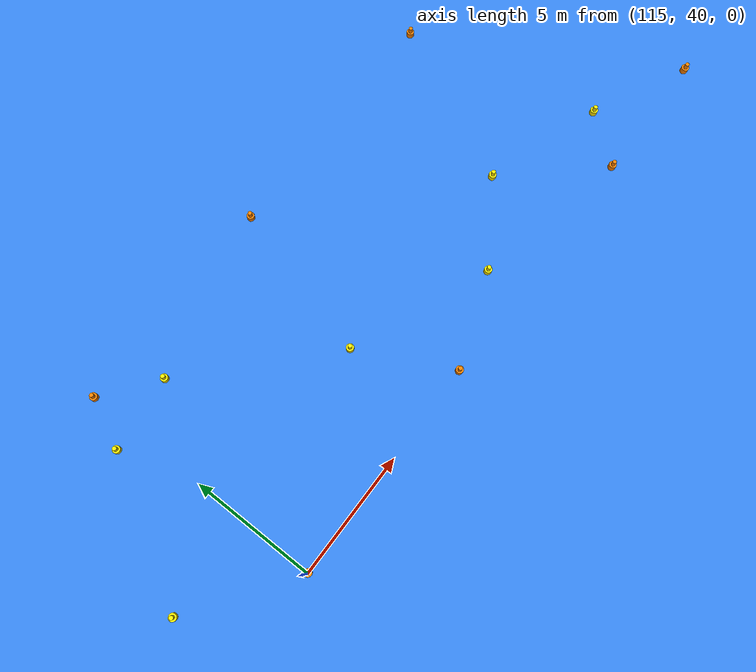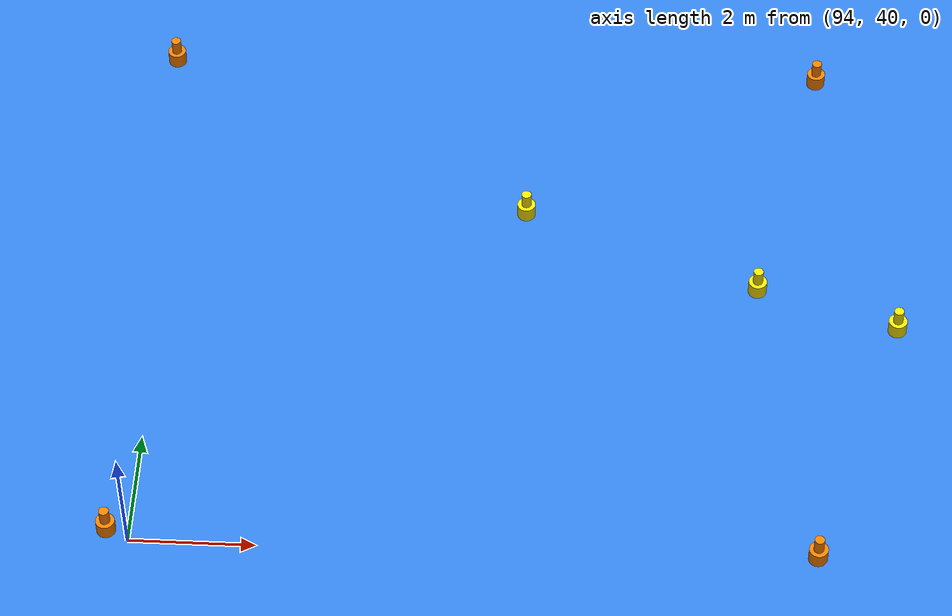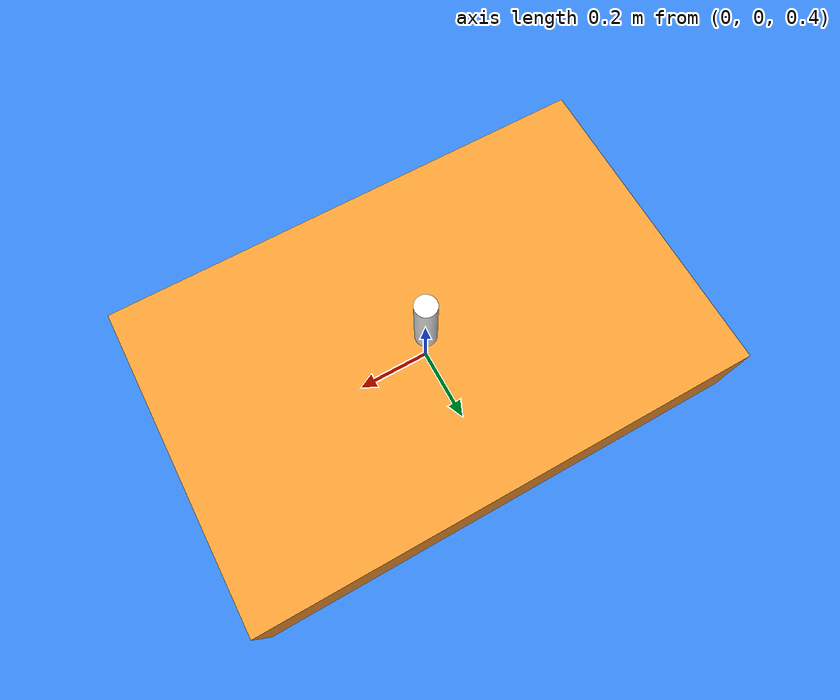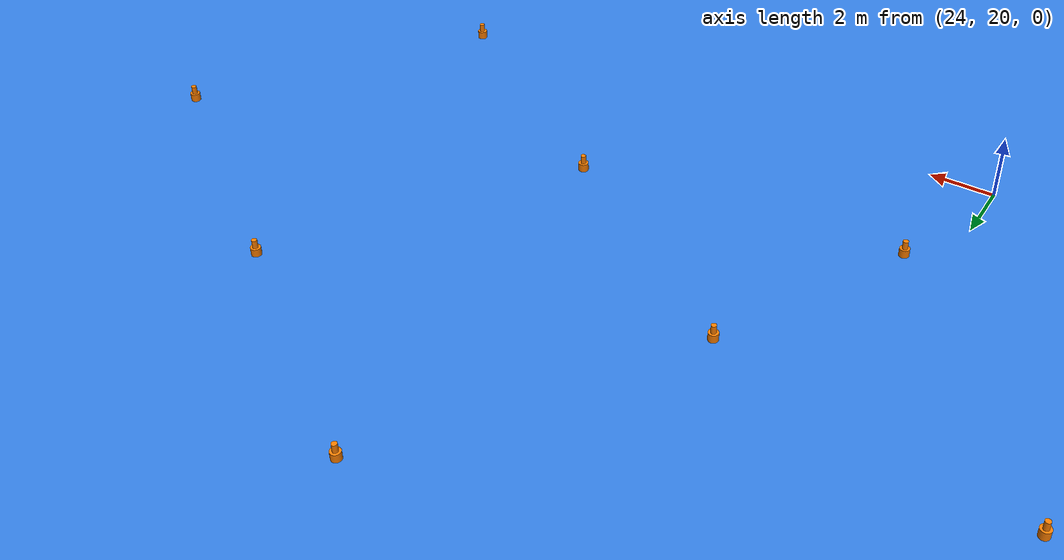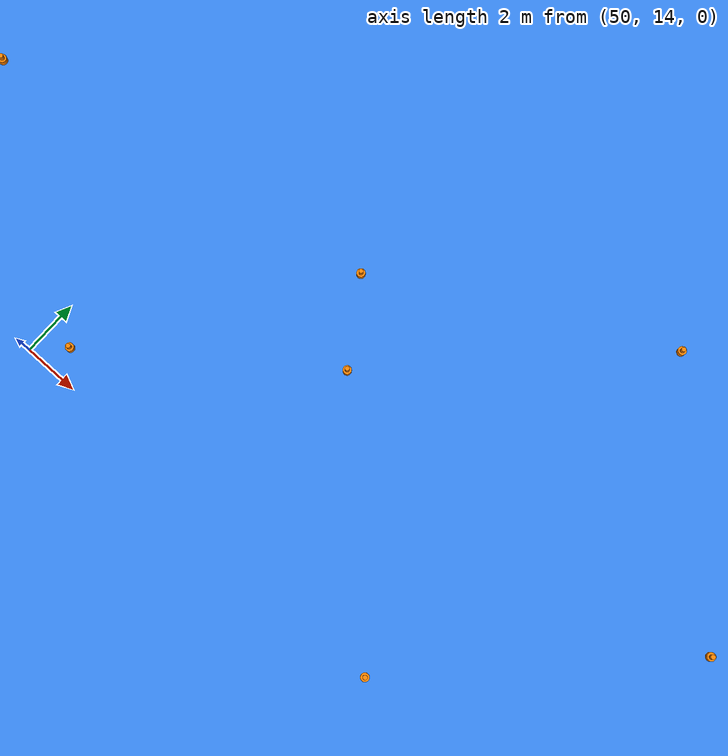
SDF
<?xml version="1.0" ?>
<sdf version="1.6">
  <world name="ida_sim">
    <!-- Güneş ışığı + ortam aydınlatması -->
    <include>
      <uri>model://sun</uri>
    </include>

    <light name="ambient_light" type="directional">
      <cast_shadows>true</cast_shadows>
      <pose>0 0 30 0 0 0</pose>
      <diffuse>0.9 0.9 0.9 1</diffuse>
      <specular>0.2 0.2 0.2 1</specular>
      <direction>-0.5 -0.5 -0.9</direction>
      <attenuation>
        <range>1000</range>
        <constant>0.9</constant>
        <linear>0.01</linear>
        <quadratic>0.001</quadratic>
      </attenuation>
    </light>

    <!-- Varsayılan fizik (yüzey yerçekimi, standart temas) -->
    <physics type="ode">
      <max_step_size>0.001</max_step_size>
      <real_time_factor>1</real_time_factor>
      <real_time_update_rate>1000</real_time_update_rate>
    </physics>

    <!-- Su yüzeyi: z=0 düzleminde büyük mavi yarı saydam tabaka -->
    <model name="water_plane">
      <static>true</static>
      <link name="water_link">
        <collision name="water_collision">
          <pose>0 0 0 0 0 0</pose>
          <geometry>
            <plane>
              <normal>0 0 1</normal>
              <size>100 100</size>
            </plane>
          </geometry>
        </collision>
        <visual name="water_visual">
          <pose>0 0 0 0 0 0</pose>
          <geometry>
            <plane>
              <normal>0 0 1</normal>
              <size>100 100</size>
            </plane>
          </geometry>
          <material>
            <ambient>0.2 0.4 0.8 0.6</ambient>
            <diffuse>0.2 0.5 0.9 0.6</diffuse>
            <specular>0.1 0.1 0.1 1</specular>
          </material>
        </visual>
      </link>
    </model>

    <model name="ida_boat">
      <static>false</static>
      <pose>0 0 0.3 0 0 0</pose>
      <link name="boat_body">
        <pose>0 0 0.125 0 0 0</pose>
        <collision name="boat_body_collision">
          <geometry>
            <box>
              <size>1.4 0.9 0.25</size>
            </box>
          </geometry>
        </collision>
        <visual name="boat_body_visual">
          <geometry>
            <box>
              <size>1.4 0.9 0.25</size>
            </box>
          </geometry>
          <material>
            <ambient>1.0 0.55 0.15 1</ambient>
            <diffuse>1.0 0.6 0.2 1</diffuse>
          </material>
        </visual>
      </link>
      <link name="mast">
        <pose>0 0 0.25 0 0 0</pose>
        <visual name="mast_visual">
          <geometry>
            <cylinder>
              <radius>0.03</radius>
              <length>0.4</length>
            </cylinder>
          </geometry>
          <material>
            <ambient>0.9 0.9 0.9 1</ambient>
            <diffuse>1 1 1 1</diffuse>
          </material>
        </visual>
      </link>
      <!-- Kamera: tekne önüne (ENU +x) ve mast tepesine monte -->
      <link name="camera_link">
        <pose>0.5 0 0.5 0 0 0</pose>
        <inertial>
          <mass>0.05</mass>
          <inertia>
            <ixx>0.0001</ixx>
            <iyy>0.0001</iyy>
            <izz>0.0001</izz>
          </inertia>
        </inertial>
        <sensor name="camera_sensor" type="camera">
          <camera>
            <horizontal_fov>1.57</horizontal_fov>
            <image>
              <width>640</width>
              <height>480</height>
            </image>
            <clip>
              <near>0.1</near>
              <far>100</far>
            </clip>
          </camera>
          <update_rate>10</update_rate>
          <plugin name="ida_camera" filename="libgazebo_ros_camera.so">
            <ros>
              <namespace>/</namespace>
              <remapping>image_raw:=camera/image_raw</remapping>
            </ros>
            <camera_name>ida_camera</camera_name>
            <image_width>640</image_width>
            <image_height>480</image_height>
            <update_rate>10</update_rate>
            <horizontal_fov>1.57</horizontal_fov>
          </plugin>
        </sensor>
      </link>
      <!-- 2D Lidar (ray): mast üstü, 360 derece -->
      <link name="lidar_link">
        <pose>0.2 0 0.2 0 0 0</pose>
        <inertial>
          <mass>0.05</mass>
          <inertia>
            <ixx>0.0001</ixx>
            <iyy>0.0001</iyy>
            <izz>0.0001</izz>
          </inertia>
        </inertial>
        <sensor name="lidar_sensor" type="ray">
          <ray>
            <scan>
              <horizontal>
                <samples>360</samples>
                <resolution>1</resolution>
                <min_angle>-3.14159</min_angle>
                <max_angle>3.14159</max_angle>
              </horizontal>
            </scan>
            <range>
              <min>0.3</min>
              <max>18.0</max>
              <resolution>0.01</resolution>
            </range>
            <noise>
              <type>gaussian</type>
              <mean>0.0</mean>
              <stddev>0.01</stddev>
            </noise>
          </ray>
          <update_rate>10</update_rate>
          <plugin name="ida_lidar" filename="libgazebo_ros_ray.so">
            <ros>
              <namespace>/</namespace>
              <remapping>scan:=scan</remapping>
            </ros>
            <output_type>sensor_msgs/LaserScan</output_type>
            <update_rate>10</update_rate>
            <min_angle>-3.14159</min_angle>
            <max_angle>3.14159</max_angle>
            <range_min>0.3</range_min>
            <range_max>18.0</range_max>
          </plugin>
        </sensor>
      </link>
    </model>

<!-- ida_course_models.sdf — otomatik üretildi (tools/generate_course.py).
     Duba katmanı: world'e gömülür (ENU dönüşümü uygulanır);
     pozlar full_mission.yaml ile birebir. -->
  <model name="p1_o_l1" static="true">
    <pose>3.201 6.159 0.250 0 0 0</pose>
    <link name="p1_o_l1_link">
      <collision name="p1_o_l1_collision">
        <geometry>
          <cylinder>
            <radius>0.15</radius>
            <length>0.5</length>
          </cylinder>
        </geometry>
      </collision>
      <visual name="p1_o_l1_visual_bottom">
        <pose>0 0 0.125 0 0 0</pose>
        <geometry>
          <cylinder>
            <radius>0.15</radius>
            <length>0.25</length>
          </cylinder>
        </geometry>
        <material>
          <ambient>1.00 0.50 0.00 1.00</ambient>
          <diffuse>1.00 0.50 0.00 1.00</diffuse>
        </material>
      </visual>
      <visual name="p1_o_l1_visual_top">
        <pose>0 0 0.375 0 0 0</pose>
        <geometry>
          <cylinder>
            <radius>0.08</radius>
            <length>0.25</length>
          </cylinder>
        </geometry>
        <material>
          <ambient>1.00 0.50 0.00 1.00</ambient>
          <diffuse>1.00 0.50 0.00 1.00</diffuse>
        </material>
      </visual>
    </link>
  </model>
  <model name="p1_o_r1" static="true">
    <pose>-3.201 13.841 0.250 0 0 0</pose>
    <link name="p1_o_r1_link">
      <collision name="p1_o_r1_collision">
        <geometry>
          <cylinder>
            <radius>0.15</radius>
            <length>0.5</length>
          </cylinder>
        </geometry>
      </collision>
      <visual name="p1_o_r1_visual_bottom">
        <pose>0 0 0.125 0 0 0</pose>
        <geometry>
          <cylinder>
            <radius>0.15</radius>
            <length>0.25</length>
          </cylinder>
        </geometry>
        <material>
          <ambient>1.00 0.50 0.00 1.00</ambient>
          <diffuse>1.00 0.50 0.00 1.00</diffuse>
        </material>
      </visual>
      <visual name="p1_o_r1_visual_top">
        <pose>0 0 0.375 0 0 0</pose>
        <geometry>
          <cylinder>
            <radius>0.08</radius>
            <length>0.25</length>
          </cylinder>
        </geometry>
        <material>
          <ambient>1.00 0.50 0.00 1.00</ambient>
          <diffuse>1.00 0.50 0.00 1.00</diffuse>
        </material>
      </visual>
    </link>
  </model>
  <model name="p1_o_l2" static="true">
    <pose>9.713 11.585 0.250 0 0 0</pose>
    <link name="p1_o_l2_link">
      <collision name="p1_o_l2_collision">
        <geometry>
          <cylinder>
            <radius>0.15</radius>
            <length>0.5</length>
          </cylinder>
        </geometry>
      </collision>
      <visual name="p1_o_l2_visual_bottom">
        <pose>0 0 0.125 0 0 0</pose>
        <geometry>
          <cylinder>
            <radius>0.15</radius>
            <length>0.25</length>
          </cylinder>
        </geometry>
        <material>
          <ambient>1.00 0.50 0.00 1.00</ambient>
          <diffuse>1.00 0.50 0.00 1.00</diffuse>
        </material>
      </visual>
      <visual name="p1_o_l2_visual_top">
        <pose>0 0 0.375 0 0 0</pose>
        <geometry>
          <cylinder>
            <radius>0.08</radius>
            <length>0.25</length>
          </cylinder>
        </geometry>
        <material>
          <ambient>1.00 0.50 0.00 1.00</ambient>
          <diffuse>1.00 0.50 0.00 1.00</diffuse>
        </material>
      </visual>
    </link>
  </model>
  <model name="p1_o_r2" static="true">
    <pose>3.311 19.268 0.250 0 0 0</pose>
    <link name="p1_o_r2_link">
      <collision name="p1_o_r2_collision">
        <geometry>
          <cylinder>
            <radius>0.15</radius>
            <length>0.5</length>
          </cylinder>
        </geometry>
      </collision>
      <visual name="p1_o_r2_visual_bottom">
        <pose>0 0 0.125 0 0 0</pose>
        <geometry>
          <cylinder>
            <radius>0.15</radius>
            <length>0.25</length>
          </cylinder>
        </geometry>
        <material>
          <ambient>1.00 0.50 0.00 1.00</ambient>
          <diffuse>1.00 0.50 0.00 1.00</diffuse>
        </material>
      </visual>
      <visual name="p1_o_r2_visual_top">
        <pose>0 0 0.375 0 0 0</pose>
        <geometry>
          <cylinder>
            <radius>0.08</radius>
            <length>0.25</length>
          </cylinder>
        </geometry>
        <material>
          <ambient>1.00 0.50 0.00 1.00</ambient>
          <diffuse>1.00 0.50 0.00 1.00</diffuse>
        </material>
      </visual>
    </link>
  </model>
  <model name="p1_o_l3" static="true">
    <pose>17.403 17.994 0.250 0 0 0</pose>
    <link name="p1_o_l3_link">
      <collision name="p1_o_l3_collision">
        <geometry>
          <cylinder>
            <radius>0.15</radius>
            <length>0.5</length>
          </cylinder>
        </geometry>
      </collision>
      <visual name="p1_o_l3_visual_bottom">
        <pose>0 0 0.125 0 0 0</pose>
        <geometry>
          <cylinder>
            <radius>0.15</radius>
            <length>0.25</length>
          </cylinder>
        </geometry>
        <material>
          <ambient>1.00 0.50 0.00 1.00</ambient>
          <diffuse>1.00 0.50 0.00 1.00</diffuse>
        </material>
      </visual>
      <visual name="p1_o_l3_visual_top">
        <pose>0 0 0.375 0 0 0</pose>
        <geometry>
          <cylinder>
            <radius>0.08</radius>
            <length>0.25</length>
          </cylinder>
        </geometry>
        <material>
          <ambient>1.00 0.50 0.00 1.00</ambient>
          <diffuse>1.00 0.50 0.00 1.00</diffuse>
        </material>
      </visual>
    </link>
  </model>
  <model name="p1_o_r3" static="true">
    <pose>11.001 25.676 0.250 0 0 0</pose>
    <link name="p1_o_r3_link">
      <collision name="p1_o_r3_collision">
        <geometry>
          <cylinder>
            <radius>0.15</radius>
            <length>0.5</length>
          </cylinder>
        </geometry>
      </collision>
      <visual name="p1_o_r3_visual_bottom">
        <pose>0 0 0.125 0 0 0</pose>
        <geometry>
          <cylinder>
            <radius>0.15</radius>
            <length>0.25</length>
          </cylinder>
        </geometry>
        <material>
          <ambient>1.00 0.50 0.00 1.00</ambient>
          <diffuse>1.00 0.50 0.00 1.00</diffuse>
        </material>
      </visual>
      <visual name="p1_o_r3_visual_top">
        <pose>0 0 0.375 0 0 0</pose>
        <geometry>
          <cylinder>
            <radius>0.08</radius>
            <length>0.25</length>
          </cylinder>
        </geometry>
        <material>
          <ambient>1.00 0.50 0.00 1.00</ambient>
          <diffuse>1.00 0.50 0.00 1.00</diffuse>
        </material>
      </visual>
    </link>
  </model>
  <model name="p1_o_l4" static="true">
    <pose>25.121 24.426 0.250 0 0 0</pose>
    <link name="p1_o_l4_link">
      <collision name="p1_o_l4_collision">
        <geometry>
          <cylinder>
            <radius>0.15</radius>
            <length>0.5</length>
          </cylinder>
        </geometry>
      </collision>
      <visual name="p1_o_l4_visual_bottom">
        <pose>0 0 0.125 0 0 0</pose>
        <geometry>
          <cylinder>
            <radius>0.15</radius>
            <length>0.25</length>
          </cylinder>
        </geometry>
        <material>
          <ambient>1.00 0.50 0.00 1.00</ambient>
          <diffuse>1.00 0.50 0.00 1.00</diffuse>
        </material>
      </visual>
      <visual name="p1_o_l4_visual_top">
        <pose>0 0 0.375 0 0 0</pose>
        <geometry>
          <cylinder>
            <radius>0.08</radius>
            <length>0.25</length>
          </cylinder>
        </geometry>
        <material>
          <ambient>1.00 0.50 0.00 1.00</ambient>
          <diffuse>1.00 0.50 0.00 1.00</diffuse>
        </material>
      </visual>
    </link>
  </model>
  <model name="p1_o_r4" static="true">
    <pose>18.719 32.108 0.250 0 0 0</pose>
    <link name="p1_o_r4_link">
      <collision name="p1_o_r4_collision">
        <geometry>
          <cylinder>
            <radius>0.15</radius>
            <length>0.5</length>
          </cylinder>
        </geometry>
      </collision>
      <visual name="p1_o_r4_visual_bottom">
        <pose>0 0 0.125 0 0 0</pose>
        <geometry>
          <cylinder>
            <radius>0.15</radius>
            <length>0.25</length>
          </cylinder>
        </geometry>
        <material>
          <ambient>1.00 0.50 0.00 1.00</ambient>
          <diffuse>1.00 0.50 0.00 1.00</diffuse>
        </material>
      </visual>
      <visual name="p1_o_r4_visual_top">
        <pose>0 0 0.375 0 0 0</pose>
        <geometry>
          <cylinder>
            <radius>0.08</radius>
            <length>0.25</length>
          </cylinder>
        </geometry>
        <material>
          <ambient>1.00 0.50 0.00 1.00</ambient>
          <diffuse>1.00 0.50 0.00 1.00</diffuse>
        </material>
      </visual>
    </link>
  </model>
  <model name="p1_o_l5" static="true">
    <pose>27.994 30.328 0.250 0 0 0</pose>
    <link name="p1_o_l5_link">
      <collision name="p1_o_l5_collision">
        <geometry>
          <cylinder>
            <radius>0.15</radius>
            <length>0.5</length>
          </cylinder>
        </geometry>
      </collision>
      <visual name="p1_o_l5_visual_bottom">
        <pose>0 0 0.125 0 0 0</pose>
        <geometry>
          <cylinder>
            <radius>0.15</radius>
            <length>0.25</length>
          </cylinder>
        </geometry>
        <material>
          <ambient>1.00 0.50 0.00 1.00</ambient>
          <diffuse>1.00 0.50 0.00 1.00</diffuse>
        </material>
      </visual>
      <visual name="p1_o_l5_visual_top">
        <pose>0 0 0.375 0 0 0</pose>
        <geometry>
          <cylinder>
            <radius>0.08</radius>
            <length>0.25</length>
          </cylinder>
        </geometry>
        <material>
          <ambient>1.00 0.50 0.00 1.00</ambient>
          <diffuse>1.00 0.50 0.00 1.00</diffuse>
        </material>
      </visual>
    </link>
  </model>
  <model name="p1_o_r5" static="true">
    <pose>33.541 38.648 0.250 0 0 0</pose>
    <link name="p1_o_r5_link">
      <collision name="p1_o_r5_collision">
        <geometry>
          <cylinder>
            <radius>0.15</radius>
            <length>0.5</length>
          </cylinder>
        </geometry>
      </collision>
      <visual name="p1_o_r5_visual_bottom">
        <pose>0 0 0.125 0 0 0</pose>
        <geometry>
          <cylinder>
            <radius>0.15</radius>
            <length>0.25</length>
          </cylinder>
        </geometry>
        <material>
          <ambient>1.00 0.50 0.00 1.00</ambient>
          <diffuse>1.00 0.50 0.00 1.00</diffuse>
        </material>
      </visual>
      <visual name="p1_o_r5_visual_top">
        <pose>0 0 0.375 0 0 0</pose>
        <geometry>
          <cylinder>
            <radius>0.08</radius>
            <length>0.25</length>
          </cylinder>
        </geometry>
        <material>
          <ambient>1.00 0.50 0.00 1.00</ambient>
          <diffuse>1.00 0.50 0.00 1.00</diffuse>
        </material>
      </visual>
    </link>
  </model>
  <model name="p1_o_l6" static="true">
    <pose>34.992 25.663 0.250 0 0 0</pose>
    <link name="p1_o_l6_link">
      <collision name="p1_o_l6_collision">
        <geometry>
          <cylinder>
            <radius>0.15</radius>
            <length>0.5</length>
          </cylinder>
        </geometry>
      </collision>
      <visual name="p1_o_l6_visual_bottom">
        <pose>0 0 0.125 0 0 0</pose>
        <geometry>
          <cylinder>
            <radius>0.15</radius>
            <length>0.25</length>
          </cylinder>
        </geometry>
        <material>
          <ambient>1.00 0.50 0.00 1.00</ambient>
          <diffuse>1.00 0.50 0.00 1.00</diffuse>
        </material>
      </visual>
      <visual name="p1_o_l6_visual_top">
        <pose>0 0 0.375 0 0 0</pose>
        <geometry>
          <cylinder>
            <radius>0.08</radius>
            <length>0.25</length>
          </cylinder>
        </geometry>
        <material>
          <ambient>1.00 0.50 0.00 1.00</ambient>
          <diffuse>1.00 0.50 0.00 1.00</diffuse>
        </material>
      </visual>
    </link>
  </model>
  <model name="p1_o_r6" static="true">
    <pose>40.539 33.983 0.250 0 0 0</pose>
    <link name="p1_o_r6_link">
      <collision name="p1_o_r6_collision">
        <geometry>
          <cylinder>
            <radius>0.15</radius>
            <length>0.5</length>
          </cylinder>
        </geometry>
      </collision>
      <visual name="p1_o_r6_visual_bottom">
        <pose>0 0 0.125 0 0 0</pose>
        <geometry>
          <cylinder>
            <radius>0.15</radius>
            <length>0.25</length>
          </cylinder>
        </geometry>
        <material>
          <ambient>1.00 0.50 0.00 1.00</ambient>
          <diffuse>1.00 0.50 0.00 1.00</diffuse>
        </material>
      </visual>
      <visual name="p1_o_r6_visual_top">
        <pose>0 0 0.375 0 0 0</pose>
        <geometry>
          <cylinder>
            <radius>0.08</radius>
            <length>0.25</length>
          </cylinder>
        </geometry>
        <material>
          <ambient>1.00 0.50 0.00 1.00</ambient>
          <diffuse>1.00 0.50 0.00 1.00</diffuse>
        </material>
      </visual>
    </link>
  </model>
  <model name="p1_o_l7" static="true">
    <pose>42.392 20.730 0.250 0 0 0</pose>
    <link name="p1_o_l7_link">
      <collision name="p1_o_l7_collision">
        <geometry>
          <cylinder>
            <radius>0.15</radius>
            <length>0.5</length>
          </cylinder>
        </geometry>
      </collision>
      <visual name="p1_o_l7_visual_bottom">
        <pose>0 0 0.125 0 0 0</pose>
        <geometry>
          <cylinder>
            <radius>0.15</radius>
            <length>0.25</length>
          </cylinder>
        </geometry>
        <material>
          <ambient>1.00 0.50 0.00 1.00</ambient>
          <diffuse>1.00 0.50 0.00 1.00</diffuse>
        </material>
      </visual>
      <visual name="p1_o_l7_visual_top">
        <pose>0 0 0.375 0 0 0</pose>
        <geometry>
          <cylinder>
            <radius>0.08</radius>
            <length>0.25</length>
          </cylinder>
        </geometry>
        <material>
          <ambient>1.00 0.50 0.00 1.00</ambient>
          <diffuse>1.00 0.50 0.00 1.00</diffuse>
        </material>
      </visual>
    </link>
  </model>
  <model name="p1_o_r7" static="true">
    <pose>47.939 29.050 0.250 0 0 0</pose>
    <link name="p1_o_r7_link">
      <collision name="p1_o_r7_collision">
        <geometry>
          <cylinder>
            <radius>0.15</radius>
            <length>0.5</length>
          </cylinder>
        </geometry>
      </collision>
      <visual name="p1_o_r7_visual_bottom">
        <pose>0 0 0.125 0 0 0</pose>
        <geometry>
          <cylinder>
            <radius>0.15</radius>
            <length>0.25</length>
          </cylinder>
        </geometry>
        <material>
          <ambient>1.00 0.50 0.00 1.00</ambient>
          <diffuse>1.00 0.50 0.00 1.00</diffuse>
        </material>
      </visual>
      <visual name="p1_o_r7_visual_top">
        <pose>0 0 0.375 0 0 0</pose>
        <geometry>
          <cylinder>
            <radius>0.08</radius>
            <length>0.25</length>
          </cylinder>
        </geometry>
        <material>
          <ambient>1.00 0.50 0.00 1.00</ambient>
          <diffuse>1.00 0.50 0.00 1.00</diffuse>
        </material>
      </visual>
    </link>
  </model>
  <model name="p1_o_l8" static="true">
    <pose>51.048 14.958 0.250 0 0 0</pose>
    <link name="p1_o_l8_link">
      <collision name="p1_o_l8_collision">
        <geometry>
          <cylinder>
            <radius>0.15</radius>
            <length>0.5</length>
          </cylinder>
        </geometry>
      </collision>
      <visual name="p1_o_l8_visual_bottom">
        <pose>0 0 0.125 0 0 0</pose>
        <geometry>
          <cylinder>
            <radius>0.15</radius>
            <length>0.25</length>
          </cylinder>
        </geometry>
        <material>
          <ambient>1.00 0.50 0.00 1.00</ambient>
          <diffuse>1.00 0.50 0.00 1.00</diffuse>
        </material>
      </visual>
      <visual name="p1_o_l8_visual_top">
        <pose>0 0 0.375 0 0 0</pose>
        <geometry>
          <cylinder>
            <radius>0.08</radius>
            <length>0.25</length>
          </cylinder>
        </geometry>
        <material>
          <ambient>1.00 0.50 0.00 1.00</ambient>
          <diffuse>1.00 0.50 0.00 1.00</diffuse>
        </material>
      </visual>
    </link>
  </model>
  <model name="p1_o_r8" static="true">
    <pose>56.595 23.279 0.250 0 0 0</pose>
    <link name="p1_o_r8_link">
      <collision name="p1_o_r8_collision">
        <geometry>
          <cylinder>
            <radius>0.15</radius>
            <length>0.5</length>
          </cylinder>
        </geometry>
      </collision>
      <visual name="p1_o_r8_visual_bottom">
        <pose>0 0 0.125 0 0 0</pose>
        <geometry>
          <cylinder>
            <radius>0.15</radius>
            <length>0.25</length>
          </cylinder>
        </geometry>
        <material>
          <ambient>1.00 0.50 0.00 1.00</ambient>
          <diffuse>1.00 0.50 0.00 1.00</diffuse>
        </material>
      </visual>
      <visual name="p1_o_r8_visual_top">
        <pose>0 0 0.375 0 0 0</pose>
        <geometry>
          <cylinder>
            <radius>0.08</radius>
            <length>0.25</length>
          </cylinder>
        </geometry>
        <material>
          <ambient>1.00 0.50 0.00 1.00</ambient>
          <diffuse>1.00 0.50 0.00 1.00</diffuse>
        </material>
      </visual>
    </link>
  </model>
  <model name="p1_o_l9" static="true">
    <pose>65.516 13.445 0.250 0 0 0</pose>
    <link name="p1_o_l9_link">
      <collision name="p1_o_l9_collision">
        <geometry>
          <cylinder>
            <radius>0.15</radius>
            <length>0.5</length>
          </cylinder>
        </geometry>
      </collision>
      <visual name="p1_o_l9_visual_bottom">
        <pose>0 0 0.125 0 0 0</pose>
        <geometry>
          <cylinder>
            <radius>0.15</radius>
            <length>0.25</length>
          </cylinder>
        </geometry>
        <material>
          <ambient>1.00 0.50 0.00 1.00</ambient>
          <diffuse>1.00 0.50 0.00 1.00</diffuse>
        </material>
      </visual>
      <visual name="p1_o_l9_visual_top">
        <pose>0 0 0.375 0 0 0</pose>
        <geometry>
          <cylinder>
            <radius>0.08</radius>
            <length>0.25</length>
          </cylinder>
        </geometry>
        <material>
          <ambient>1.00 0.50 0.00 1.00</ambient>
          <diffuse>1.00 0.50 0.00 1.00</diffuse>
        </material>
      </visual>
    </link>
  </model>
  <model name="p1_o_r9" static="true">
    <pose>58.445 20.516 0.250 0 0 0</pose>
    <link name="p1_o_r9_link">
      <collision name="p1_o_r9_collision">
        <geometry>
          <cylinder>
            <radius>0.15</radius>
            <length>0.5</length>
          </cylinder>
        </geometry>
      </collision>
      <visual name="p1_o_r9_visual_bottom">
        <pose>0 0 0.125 0 0 0</pose>
        <geometry>
          <cylinder>
            <radius>0.15</radius>
            <length>0.25</length>
          </cylinder>
        </geometry>
        <material>
          <ambient>1.00 0.50 0.00 1.00</ambient>
          <diffuse>1.00 0.50 0.00 1.00</diffuse>
        </material>
      </visual>
      <visual name="p1_o_r9_visual_top">
        <pose>0 0 0.375 0 0 0</pose>
        <geometry>
          <cylinder>
            <radius>0.08</radius>
            <length>0.25</length>
          </cylinder>
        </geometry>
        <material>
          <ambient>1.00 0.50 0.00 1.00</ambient>
          <diffuse>1.00 0.50 0.00 1.00</diffuse>
        </material>
      </visual>
    </link>
  </model>
  <model name="p1_o_l10" static="true">
    <pose>73.389 21.318 0.250 0 0 0</pose>
    <link name="p1_o_l10_link">
      <collision name="p1_o_l10_collision">
        <geometry>
          <cylinder>
            <radius>0.15</radius>
            <length>0.5</length>
          </cylinder>
        </geometry>
      </collision>
      <visual name="p1_o_l10_visual_bottom">
        <pose>0 0 0.125 0 0 0</pose>
        <geometry>
          <cylinder>
            <radius>0.15</radius>
            <length>0.25</length>
          </cylinder>
        </geometry>
        <material>
          <ambient>1.00 0.50 0.00 1.00</ambient>
          <diffuse>1.00 0.50 0.00 1.00</diffuse>
        </material>
      </visual>
      <visual name="p1_o_l10_visual_top">
        <pose>0 0 0.375 0 0 0</pose>
        <geometry>
          <cylinder>
            <radius>0.08</radius>
            <length>0.25</length>
          </cylinder>
        </geometry>
        <material>
          <ambient>1.00 0.50 0.00 1.00</ambient>
          <diffuse>1.00 0.50 0.00 1.00</diffuse>
        </material>
      </visual>
    </link>
  </model>
  <model name="p1_o_r10" static="true">
    <pose>66.318 28.389 0.250 0 0 0</pose>
    <link name="p1_o_r10_link">
      <collision name="p1_o_r10_collision">
        <geometry>
          <cylinder>
            <radius>0.15</radius>
            <length>0.5</length>
          </cylinder>
        </geometry>
      </collision>
      <visual name="p1_o_r10_visual_bottom">
        <pose>0 0 0.125 0 0 0</pose>
        <geometry>
          <cylinder>
            <radius>0.15</radius>
            <length>0.25</length>
          </cylinder>
        </geometry>
        <material>
          <ambient>1.00 0.50 0.00 1.00</ambient>
          <diffuse>1.00 0.50 0.00 1.00</diffuse>
        </material>
      </visual>
      <visual name="p1_o_r10_visual_top">
        <pose>0 0 0.375 0 0 0</pose>
        <geometry>
          <cylinder>
            <radius>0.08</radius>
            <length>0.25</length>
          </cylinder>
        </geometry>
        <material>
          <ambient>1.00 0.50 0.00 1.00</ambient>
          <diffuse>1.00 0.50 0.00 1.00</diffuse>
        </material>
      </visual>
    </link>
  </model>
  <model name="p1_o_l11" static="true">
    <pose>80.595 28.524 0.250 0 0 0</pose>
    <link name="p1_o_l11_link">
      <collision name="p1_o_l11_collision">
        <geometry>
          <cylinder>
            <radius>0.15</radius>
            <length>0.5</length>
          </cylinder>
        </geometry>
      </collision>
      <visual name="p1_o_l11_visual_bottom">
        <pose>0 0 0.125 0 0 0</pose>
        <geometry>
          <cylinder>
            <radius>0.15</radius>
            <length>0.25</length>
          </cylinder>
        </geometry>
        <material>
          <ambient>1.00 0.50 0.00 1.00</ambient>
          <diffuse>1.00 0.50 0.00 1.00</diffuse>
        </material>
      </visual>
      <visual name="p1_o_l11_visual_top">
        <pose>0 0 0.375 0 0 0</pose>
        <geometry>
          <cylinder>
            <radius>0.08</radius>
            <length>0.25</length>
          </cylinder>
        </geometry>
        <material>
          <ambient>1.00 0.50 0.00 1.00</ambient>
          <diffuse>1.00 0.50 0.00 1.00</diffuse>
        </material>
      </visual>
    </link>
  </model>
  <model name="p1_o_r11" static="true">
    <pose>73.524 35.595 0.250 0 0 0</pose>
    <link name="p1_o_r11_link">
      <collision name="p1_o_r11_collision">
        <geometry>
          <cylinder>
            <radius>0.15</radius>
            <length>0.5</length>
          </cylinder>
        </geometry>
      </collision>
      <visual name="p1_o_r11_visual_bottom">
        <pose>0 0 0.125 0 0 0</pose>
        <geometry>
          <cylinder>
            <radius>0.15</radius>
            <length>0.25</length>
          </cylinder>
        </geometry>
        <material>
          <ambient>1.00 0.50 0.00 1.00</ambient>
          <diffuse>1.00 0.50 0.00 1.00</diffuse>
        </material>
      </visual>
      <visual name="p1_o_r11_visual_top">
        <pose>0 0 0.375 0 0 0</pose>
        <geometry>
          <cylinder>
            <radius>0.08</radius>
            <length>0.25</length>
          </cylinder>
        </geometry>
        <material>
          <ambient>1.00 0.50 0.00 1.00</ambient>
          <diffuse>1.00 0.50 0.00 1.00</diffuse>
        </material>
      </visual>
    </link>
  </model>
  <model name="p1_o_l12" static="true">
    <pose>88.318 36.247 0.250 0 0 0</pose>
    <link name="p1_o_l12_link">
      <collision name="p1_o_l12_collision">
        <geometry>
          <cylinder>
            <radius>0.15</radius>
            <length>0.5</length>
          </cylinder>
        </geometry>
      </collision>
      <visual name="p1_o_l12_visual_bottom">
        <pose>0 0 0.125 0 0 0</pose>
        <geometry>
          <cylinder>
            <radius>0.15</radius>
            <length>0.25</length>
          </cylinder>
        </geometry>
        <material>
          <ambient>1.00 0.50 0.00 1.00</ambient>
          <diffuse>1.00 0.50 0.00 1.00</diffuse>
        </material>
      </visual>
      <visual name="p1_o_l12_visual_top">
        <pose>0 0 0.375 0 0 0</pose>
        <geometry>
          <cylinder>
            <radius>0.08</radius>
            <length>0.25</length>
          </cylinder>
        </geometry>
        <material>
          <ambient>1.00 0.50 0.00 1.00</ambient>
          <diffuse>1.00 0.50 0.00 1.00</diffuse>
        </material>
      </visual>
    </link>
  </model>
  <model name="p1_o_r12" static="true">
    <pose>81.247 43.318 0.250 0 0 0</pose>
    <link name="p1_o_r12_link">
      <collision name="p1_o_r12_collision">
        <geometry>
          <cylinder>
            <radius>0.15</radius>
            <length>0.5</length>
          </cylinder>
        </geometry>
      </collision>
      <visual name="p1_o_r12_visual_bottom">
        <pose>0 0 0.125 0 0 0</pose>
        <geometry>
          <cylinder>
            <radius>0.15</radius>
            <length>0.25</length>
          </cylinder>
        </geometry>
        <material>
          <ambient>1.00 0.50 0.00 1.00</ambient>
          <diffuse>1.00 0.50 0.00 1.00</diffuse>
        </material>
      </visual>
      <visual name="p1_o_r12_visual_top">
        <pose>0 0 0.375 0 0 0</pose>
        <geometry>
          <cylinder>
            <radius>0.08</radius>
            <length>0.25</length>
          </cylinder>
        </geometry>
        <material>
          <ambient>1.00 0.50 0.00 1.00</ambient>
          <diffuse>1.00 0.50 0.00 1.00</diffuse>
        </material>
      </visual>
    </link>
  </model>
  <model name="p2_o_l1" static="true">
    <pose>93.694 40.000 0.250 0 0 0</pose>
    <link name="p2_o_l1_link">
      <collision name="p2_o_l1_collision">
        <geometry>
          <cylinder>
            <radius>0.15</radius>
            <length>0.5</length>
          </cylinder>
        </geometry>
      </collision>
      <visual name="p2_o_l1_visual_bottom">
        <pose>0 0 0.125 0 0 0</pose>
        <geometry>
          <cylinder>
            <radius>0.15</radius>
            <length>0.25</length>
          </cylinder>
        </geometry>
        <material>
          <ambient>1.00 0.50 0.00 1.00</ambient>
          <diffuse>1.00 0.50 0.00 1.00</diffuse>
        </material>
      </visual>
      <visual name="p2_o_l1_visual_top">
        <pose>0 0 0.375 0 0 0</pose>
        <geometry>
          <cylinder>
            <radius>0.08</radius>
            <length>0.25</length>
          </cylinder>
        </geometry>
        <material>
          <ambient>1.00 0.50 0.00 1.00</ambient>
          <diffuse>1.00 0.50 0.00 1.00</diffuse>
        </material>
      </visual>
    </link>
  </model>
  <model name="p2_o_r1" static="true">
    <pose>93.694 50.000 0.250 0 0 0</pose>
    <link name="p2_o_r1_link">
      <collision name="p2_o_r1_collision">
        <geometry>
          <cylinder>
            <radius>0.15</radius>
            <length>0.5</length>
          </cylinder>
        </geometry>
      </collision>
      <visual name="p2_o_r1_visual_bottom">
        <pose>0 0 0.125 0 0 0</pose>
        <geometry>
          <cylinder>
            <radius>0.15</radius>
            <length>0.25</length>
          </cylinder>
        </geometry>
        <material>
          <ambient>1.00 0.50 0.00 1.00</ambient>
          <diffuse>1.00 0.50 0.00 1.00</diffuse>
        </material>
      </visual>
      <visual name="p2_o_r1_visual_top">
        <pose>0 0 0.375 0 0 0</pose>
        <geometry>
          <cylinder>
            <radius>0.08</radius>
            <length>0.25</length>
          </cylinder>
        </geometry>
        <material>
          <ambient>1.00 0.50 0.00 1.00</ambient>
          <diffuse>1.00 0.50 0.00 1.00</diffuse>
        </material>
      </visual>
    </link>
  </model>
  <model name="p2_o_l2" static="true">
    <pose>104.698 40.000 0.250 0 0 0</pose>
    <link name="p2_o_l2_link">
      <collision name="p2_o_l2_collision">
        <geometry>
          <cylinder>
            <radius>0.15</radius>
            <length>0.5</length>
          </cylinder>
        </geometry>
      </collision>
      <visual name="p2_o_l2_visual_bottom">
        <pose>0 0 0.125 0 0 0</pose>
        <geometry>
          <cylinder>
            <radius>0.15</radius>
            <length>0.25</length>
          </cylinder>
        </geometry>
        <material>
          <ambient>1.00 0.50 0.00 1.00</ambient>
          <diffuse>1.00 0.50 0.00 1.00</diffuse>
        </material>
      </visual>
      <visual name="p2_o_l2_visual_top">
        <pose>0 0 0.375 0 0 0</pose>
        <geometry>
          <cylinder>
            <radius>0.08</radius>
            <length>0.25</length>
          </cylinder>
        </geometry>
        <material>
          <ambient>1.00 0.50 0.00 1.00</ambient>
          <diffuse>1.00 0.50 0.00 1.00</diffuse>
        </material>
      </visual>
    </link>
  </model>
  <model name="p2_o_r2" static="true">
    <pose>104.698 50.000 0.250 0 0 0</pose>
    <link name="p2_o_r2_link">
      <collision name="p2_o_r2_collision">
        <geometry>
          <cylinder>
            <radius>0.15</radius>
            <length>0.5</length>
          </cylinder>
        </geometry>
      </collision>
      <visual name="p2_o_r2_visual_bottom">
        <pose>0 0 0.125 0 0 0</pose>
        <geometry>
          <cylinder>
            <radius>0.15</radius>
            <length>0.25</length>
          </cylinder>
        </geometry>
        <material>
          <ambient>1.00 0.50 0.00 1.00</ambient>
          <diffuse>1.00 0.50 0.00 1.00</diffuse>
        </material>
      </visual>
      <visual name="p2_o_r2_visual_top">
        <pose>0 0 0.375 0 0 0</pose>
        <geometry>
          <cylinder>
            <radius>0.08</radius>
            <length>0.25</length>
          </cylinder>
        </geometry>
        <material>
          <ambient>1.00 0.50 0.00 1.00</ambient>
          <diffuse>1.00 0.50 0.00 1.00</diffuse>
        </material>
      </visual>
    </link>
  </model>
  <model name="p2_o_l3" static="true">
    <pose>115.044 40.000 0.250 0 0 0</pose>
    <link name="p2_o_l3_link">
      <collision name="p2_o_l3_collision">
        <geometry>
          <cylinder>
            <radius>0.15</radius>
            <length>0.5</length>
          </cylinder>
        </geometry>
      </collision>
      <visual name="p2_o_l3_visual_bottom">
        <pose>0 0 0.125 0 0 0</pose>
        <geometry>
          <cylinder>
            <radius>0.15</radius>
            <length>0.25</length>
          </cylinder>
        </geometry>
        <material>
          <ambient>1.00 0.50 0.00 1.00</ambient>
          <diffuse>1.00 0.50 0.00 1.00</diffuse>
        </material>
      </visual>
      <visual name="p2_o_l3_visual_top">
        <pose>0 0 0.375 0 0 0</pose>
        <geometry>
          <cylinder>
            <radius>0.08</radius>
            <length>0.25</length>
          </cylinder>
        </geometry>
        <material>
          <ambient>1.00 0.50 0.00 1.00</ambient>
          <diffuse>1.00 0.50 0.00 1.00</diffuse>
        </material>
      </visual>
    </link>
  </model>
  <model name="p2_o_r3" static="true">
    <pose>115.044 50.000 0.250 0 0 0</pose>
    <link name="p2_o_r3_link">
      <collision name="p2_o_r3_collision">
        <geometry>
          <cylinder>
            <radius>0.15</radius>
            <length>0.5</length>
          </cylinder>
        </geometry>
      </collision>
      <visual name="p2_o_r3_visual_bottom">
        <pose>0 0 0.125 0 0 0</pose>
        <geometry>
          <cylinder>
            <radius>0.15</radius>
            <length>0.25</length>
          </cylinder>
        </geometry>
        <material>
          <ambient>1.00 0.50 0.00 1.00</ambient>
          <diffuse>1.00 0.50 0.00 1.00</diffuse>
        </material>
      </visual>
      <visual name="p2_o_r3_visual_top">
        <pose>0 0 0.375 0 0 0</pose>
        <geometry>
          <cylinder>
            <radius>0.08</radius>
            <length>0.25</length>
          </cylinder>
        </geometry>
        <material>
          <ambient>1.00 0.50 0.00 1.00</ambient>
          <diffuse>1.00 0.50 0.00 1.00</diffuse>
        </material>
      </visual>
    </link>
  </model>
  <model name="p2_o_l4" static="true">
    <pose>124.004 40.000 0.250 0 0 0</pose>
    <link name="p2_o_l4_link">
      <collision name="p2_o_l4_collision">
        <geometry>
          <cylinder>
            <radius>0.15</radius>
            <length>0.5</length>
          </cylinder>
        </geometry>
      </collision>
      <visual name="p2_o_l4_visual_bottom">
        <pose>0 0 0.125 0 0 0</pose>
        <geometry>
          <cylinder>
            <radius>0.15</radius>
            <length>0.25</length>
          </cylinder>
        </geometry>
        <material>
          <ambient>1.00 0.50 0.00 1.00</ambient>
          <diffuse>1.00 0.50 0.00 1.00</diffuse>
        </material>
      </visual>
      <visual name="p2_o_l4_visual_top">
        <pose>0 0 0.375 0 0 0</pose>
        <geometry>
          <cylinder>
            <radius>0.08</radius>
            <length>0.25</length>
          </cylinder>
        </geometry>
        <material>
          <ambient>1.00 0.50 0.00 1.00</ambient>
          <diffuse>1.00 0.50 0.00 1.00</diffuse>
        </material>
      </visual>
    </link>
  </model>
  <model name="p2_o_r4" static="true">
    <pose>124.004 50.000 0.250 0 0 0</pose>
    <link name="p2_o_r4_link">
      <collision name="p2_o_r4_collision">
        <geometry>
          <cylinder>
            <radius>0.15</radius>
            <length>0.5</length>
          </cylinder>
        </geometry>
      </collision>
      <visual name="p2_o_r4_visual_bottom">
        <pose>0 0 0.125 0 0 0</pose>
        <geometry>
          <cylinder>
            <radius>0.15</radius>
            <length>0.25</length>
          </cylinder>
        </geometry>
        <material>
          <ambient>1.00 0.50 0.00 1.00</ambient>
          <diffuse>1.00 0.50 0.00 1.00</diffuse>
        </material>
      </visual>
      <visual name="p2_o_r4_visual_top">
        <pose>0 0 0.375 0 0 0</pose>
        <geometry>
          <cylinder>
            <radius>0.08</radius>
            <length>0.25</length>
          </cylinder>
        </geometry>
        <material>
          <ambient>1.00 0.50 0.00 1.00</ambient>
          <diffuse>1.00 0.50 0.00 1.00</diffuse>
        </material>
      </visual>
    </link>
  </model>
  <model name="p2_o_l5" static="true">
    <pose>134.461 40.000 0.250 0 0 0</pose>
    <link name="p2_o_l5_link">
      <collision name="p2_o_l5_collision">
        <geometry>
          <cylinder>
            <radius>0.15</radius>
            <length>0.5</length>
          </cylinder>
        </geometry>
      </collision>
      <visual name="p2_o_l5_visual_bottom">
        <pose>0 0 0.125 0 0 0</pose>
        <geometry>
          <cylinder>
            <radius>0.15</radius>
            <length>0.25</length>
          </cylinder>
        </geometry>
        <material>
          <ambient>1.00 0.50 0.00 1.00</ambient>
          <diffuse>1.00 0.50 0.00 1.00</diffuse>
        </material>
      </visual>
      <visual name="p2_o_l5_visual_top">
        <pose>0 0 0.375 0 0 0</pose>
        <geometry>
          <cylinder>
            <radius>0.08</radius>
            <length>0.25</length>
          </cylinder>
        </geometry>
        <material>
          <ambient>1.00 0.50 0.00 1.00</ambient>
          <diffuse>1.00 0.50 0.00 1.00</diffuse>
        </material>
      </visual>
    </link>
  </model>
  <model name="p2_o_r5" static="true">
    <pose>134.461 50.000 0.250 0 0 0</pose>
    <link name="p2_o_r5_link">
      <collision name="p2_o_r5_collision">
        <geometry>
          <cylinder>
            <radius>0.15</radius>
            <length>0.5</length>
          </cylinder>
        </geometry>
      </collision>
      <visual name="p2_o_r5_visual_bottom">
        <pose>0 0 0.125 0 0 0</pose>
        <geometry>
          <cylinder>
            <radius>0.15</radius>
            <length>0.25</length>
          </cylinder>
        </geometry>
        <material>
          <ambient>1.00 0.50 0.00 1.00</ambient>
          <diffuse>1.00 0.50 0.00 1.00</diffuse>
        </material>
      </visual>
      <visual name="p2_o_r5_visual_top">
        <pose>0 0 0.375 0 0 0</pose>
        <geometry>
          <cylinder>
            <radius>0.08</radius>
            <length>0.25</length>
          </cylinder>
        </geometry>
        <material>
          <ambient>1.00 0.50 0.00 1.00</ambient>
          <diffuse>1.00 0.50 0.00 1.00</diffuse>
        </material>
      </visual>
    </link>
  </model>
  <model name="p2_o_l6" static="true">
    <pose>140.000 40.000 0.250 0 0 0</pose>
    <link name="p2_o_l6_link">
      <collision name="p2_o_l6_collision">
        <geometry>
          <cylinder>
            <radius>0.15</radius>
            <length>0.5</length>
          </cylinder>
        </geometry>
      </collision>
      <visual name="p2_o_l6_visual_bottom">
        <pose>0 0 0.125 0 0 0</pose>
        <geometry>
          <cylinder>
            <radius>0.15</radius>
            <length>0.25</length>
          </cylinder>
        </geometry>
        <material>
          <ambient>1.00 0.50 0.00 1.00</ambient>
          <diffuse>1.00 0.50 0.00 1.00</diffuse>
        </material>
      </visual>
      <visual name="p2_o_l6_visual_top">
        <pose>0 0 0.375 0 0 0</pose>
        <geometry>
          <cylinder>
            <radius>0.08</radius>
            <length>0.25</length>
          </cylinder>
        </geometry>
        <material>
          <ambient>1.00 0.50 0.00 1.00</ambient>
          <diffuse>1.00 0.50 0.00 1.00</diffuse>
        </material>
      </visual>
    </link>
  </model>
  <model name="p2_o_r6" static="true">
    <pose>140.000 50.000 0.250 0 0 0</pose>
    <link name="p2_o_r6_link">
      <collision name="p2_o_r6_collision">
        <geometry>
          <cylinder>
            <radius>0.15</radius>
            <length>0.5</length>
          </cylinder>
        </geometry>
      </collision>
      <visual name="p2_o_r6_visual_bottom">
        <pose>0 0 0.125 0 0 0</pose>
        <geometry>
          <cylinder>
            <radius>0.15</radius>
            <length>0.25</length>
          </cylinder>
        </geometry>
        <material>
          <ambient>1.00 0.50 0.00 1.00</ambient>
          <diffuse>1.00 0.50 0.00 1.00</diffuse>
        </material>
      </visual>
      <visual name="p2_o_r6_visual_top">
        <pose>0 0 0.375 0 0 0</pose>
        <geometry>
          <cylinder>
            <radius>0.08</radius>
            <length>0.25</length>
          </cylinder>
        </geometry>
        <material>
          <ambient>1.00 0.50 0.00 1.00</ambient>
          <diffuse>1.00 0.50 0.00 1.00</diffuse>
        </material>
      </visual>
    </link>
  </model>
  <model name="p2_yellow_1" static="true">
    <pose>111.134 42.734 0.250 0 0 0</pose>
    <link name="p2_yellow_1_link">
      <collision name="p2_yellow_1_collision">
        <geometry>
          <cylinder>
            <radius>0.15</radius>
            <length>0.5</length>
          </cylinder>
        </geometry>
      </collision>
      <visual name="p2_yellow_1_visual_bottom">
        <pose>0 0 0.125 0 0 0</pose>
        <geometry>
          <cylinder>
            <radius>0.15</radius>
            <length>0.25</length>
          </cylinder>
        </geometry>
        <material>
          <ambient>1.00 0.90 0.00 1.00</ambient>
          <diffuse>1.00 0.90 0.00 1.00</diffuse>
        </material>
      </visual>
      <visual name="p2_yellow_1_visual_top">
        <pose>0 0 0.375 0 0 0</pose>
        <geometry>
          <cylinder>
            <radius>0.08</radius>
            <length>0.25</length>
          </cylinder>
        </geometry>
        <material>
          <ambient>1.00 0.90 0.00 1.00</ambient>
          <diffuse>1.00 0.90 0.00 1.00</diffuse>
        </material>
      </visual>
    </link>
  </model>
  <model name="p2_yellow_2" static="true">
    <pose>122.203 43.708 0.250 0 0 0</pose>
    <link name="p2_yellow_2_link">
      <collision name="p2_yellow_2_collision">
        <geometry>
          <cylinder>
            <radius>0.15</radius>
            <length>0.5</length>
          </cylinder>
        </geometry>
      </collision>
      <visual name="p2_yellow_2_visual_bottom">
        <pose>0 0 0.125 0 0 0</pose>
        <geometry>
          <cylinder>
            <radius>0.15</radius>
            <length>0.25</length>
          </cylinder>
        </geometry>
        <material>
          <ambient>1.00 0.90 0.00 1.00</ambient>
          <diffuse>1.00 0.90 0.00 1.00</diffuse>
        </material>
      </visual>
      <visual name="p2_yellow_2_visual_top">
        <pose>0 0 0.375 0 0 0</pose>
        <geometry>
          <cylinder>
            <radius>0.08</radius>
            <length>0.25</length>
          </cylinder>
        </geometry>
        <material>
          <ambient>1.00 0.90 0.00 1.00</ambient>
          <diffuse>1.00 0.90 0.00 1.00</diffuse>
        </material>
      </visual>
    </link>
  </model>
  <model name="p2_yellow_3" static="true">
    <pose>99.881 46.789 0.250 0 0 0</pose>
    <link name="p2_yellow_3_link">
      <collision name="p2_yellow_3_collision">
        <geometry>
          <cylinder>
            <radius>0.15</radius>
            <length>0.5</length>
          </cylinder>
        </geometry>
      </collision>
      <visual name="p2_yellow_3_visual_bottom">
        <pose>0 0 0.125 0 0 0</pose>
        <geometry>
          <cylinder>
            <radius>0.15</radius>
            <length>0.25</length>
          </cylinder>
        </geometry>
        <material>
          <ambient>1.00 0.90 0.00 1.00</ambient>
          <diffuse>1.00 0.90 0.00 1.00</diffuse>
        </material>
      </visual>
      <visual name="p2_yellow_3_visual_top">
        <pose>0 0 0.375 0 0 0</pose>
        <geometry>
          <cylinder>
            <radius>0.08</radius>
            <length>0.25</length>
          </cylinder>
        </geometry>
        <material>
          <ambient>1.00 0.90 0.00 1.00</ambient>
          <diffuse>1.00 0.90 0.00 1.00</diffuse>
        </material>
      </visual>
    </link>
  </model>
  <model name="p2_yellow_4" static="true">
    <pose>136.056 41.909 0.250 0 0 0</pose>
    <link name="p2_yellow_4_link">
      <collision name="p2_yellow_4_collision">
        <geometry>
          <cylinder>
            <radius>0.15</radius>
            <length>0.5</length>
          </cylinder>
        </geometry>
      </collision>
      <visual name="p2_yellow_4_visual_bottom">
        <pose>0 0 0.125 0 0 0</pose>
        <geometry>
          <cylinder>
            <radius>0.15</radius>
            <length>0.25</length>
          </cylinder>
        </geometry>
        <material>
          <ambient>1.00 0.90 0.00 1.00</ambient>
          <diffuse>1.00 0.90 0.00 1.00</diffuse>
        </material>
      </visual>
      <visual name="p2_yellow_4_visual_top">
        <pose>0 0 0.375 0 0 0</pose>
        <geometry>
          <cylinder>
            <radius>0.08</radius>
            <length>0.25</length>
          </cylinder>
        </geometry>
        <material>
          <ambient>1.00 0.90 0.00 1.00</ambient>
          <diffuse>1.00 0.90 0.00 1.00</diffuse>
        </material>
      </visual>
    </link>
  </model>
  <model name="p2_yellow_5" static="true">
    <pose>127.841 41.402 0.250 0 0 0</pose>
    <link name="p2_yellow_5_link">
      <collision name="p2_yellow_5_collision">
        <geometry>
          <cylinder>
            <radius>0.15</radius>
            <length>0.5</length>
          </cylinder>
        </geometry>
      </collision>
      <visual name="p2_yellow_5_visual_bottom">
        <pose>0 0 0.125 0 0 0</pose>
        <geometry>
          <cylinder>
            <radius>0.15</radius>
            <length>0.25</length>
          </cylinder>
        </geometry>
        <material>
          <ambient>1.00 0.90 0.00 1.00</ambient>
          <diffuse>1.00 0.90 0.00 1.00</diffuse>
        </material>
      </visual>
      <visual name="p2_yellow_5_visual_top">
        <pose>0 0 0.375 0 0 0</pose>
        <geometry>
          <cylinder>
            <radius>0.08</radius>
            <length>0.25</length>
          </cylinder>
        </geometry>
        <material>
          <ambient>1.00 0.90 0.00 1.00</ambient>
          <diffuse>1.00 0.90 0.00 1.00</diffuse>
        </material>
      </visual>
    </link>
  </model>
  <model name="p2_yellow_6" static="true">
    <pose>114.139 48.050 0.250 0 0 0</pose>
    <link name="p2_yellow_6_link">
      <collision name="p2_yellow_6_collision">
        <geometry>
          <cylinder>
            <radius>0.15</radius>
            <length>0.5</length>
          </cylinder>
        </geometry>
      </collision>
      <visual name="p2_yellow_6_visual_bottom">
        <pose>0 0 0.125 0 0 0</pose>
        <geometry>
          <cylinder>
            <radius>0.15</radius>
            <length>0.25</length>
          </cylinder>
        </geometry>
        <material>
          <ambient>1.00 0.90 0.00 1.00</ambient>
          <diffuse>1.00 0.90 0.00 1.00</diffuse>
        </material>
      </visual>
      <visual name="p2_yellow_6_visual_top">
        <pose>0 0 0.375 0 0 0</pose>
        <geometry>
          <cylinder>
            <radius>0.08</radius>
            <length>0.25</length>
          </cylinder>
        </geometry>
        <material>
          <ambient>1.00 0.90 0.00 1.00</ambient>
          <diffuse>1.00 0.90 0.00 1.00</diffuse>
        </material>
      </visual>
    </link>
  </model>
  <model name="p2_yellow_7" static="true">
    <pose>105.999 44.586 0.250 0 0 0</pose>
    <link name="p2_yellow_7_link">
      <collision name="p2_yellow_7_collision">
        <geometry>
          <cylinder>
            <radius>0.15</radius>
            <length>0.5</length>
          </cylinder>
        </geometry>
      </collision>
      <visual name="p2_yellow_7_visual_bottom">
        <pose>0 0 0.125 0 0 0</pose>
        <geometry>
          <cylinder>
            <radius>0.15</radius>
            <length>0.25</length>
          </cylinder>
        </geometry>
        <material>
          <ambient>1.00 0.90 0.00 1.00</ambient>
          <diffuse>1.00 0.90 0.00 1.00</diffuse>
        </material>
      </visual>
      <visual name="p2_yellow_7_visual_top">
        <pose>0 0 0.375 0 0 0</pose>
        <geometry>
          <cylinder>
            <radius>0.08</radius>
            <length>0.25</length>
          </cylinder>
        </geometry>
        <material>
          <ambient>1.00 0.90 0.00 1.00</ambient>
          <diffuse>1.00 0.90 0.00 1.00</diffuse>
        </material>
      </visual>
    </link>
  </model>
  <model name="p2_yellow_8" static="true">
    <pose>103.730 45.306 0.250 0 0 0</pose>
    <link name="p2_yellow_8_link">
      <collision name="p2_yellow_8_collision">
        <geometry>
          <cylinder>
            <radius>0.15</radius>
            <length>0.5</length>
          </cylinder>
        </geometry>
      </collision>
      <visual name="p2_yellow_8_visual_bottom">
        <pose>0 0 0.125 0 0 0</pose>
        <geometry>
          <cylinder>
            <radius>0.15</radius>
            <length>0.25</length>
          </cylinder>
        </geometry>
        <material>
          <ambient>1.00 0.90 0.00 1.00</ambient>
          <diffuse>1.00 0.90 0.00 1.00</diffuse>
        </material>
      </visual>
      <visual name="p2_yellow_8_visual_top">
        <pose>0 0 0.375 0 0 0</pose>
        <geometry>
          <cylinder>
            <radius>0.08</radius>
            <length>0.25</length>
          </cylinder>
        </geometry>
        <material>
          <ambient>1.00 0.90 0.00 1.00</ambient>
          <diffuse>1.00 0.90 0.00 1.00</diffuse>
        </material>
      </visual>
    </link>
  </model>
  <model name="p2_yellow_9" static="true">
    <pose>131.194 43.531 0.250 0 0 0</pose>
    <link name="p2_yellow_9_link">
      <collision name="p2_yellow_9_collision">
        <geometry>
          <cylinder>
            <radius>0.15</radius>
            <length>0.5</length>
          </cylinder>
        </geometry>
      </collision>
      <visual name="p2_yellow_9_visual_bottom">
        <pose>0 0 0.125 0 0 0</pose>
        <geometry>
          <cylinder>
            <radius>0.15</radius>
            <length>0.25</length>
          </cylinder>
        </geometry>
        <material>
          <ambient>1.00 0.90 0.00 1.00</ambient>
          <diffuse>1.00 0.90 0.00 1.00</diffuse>
        </material>
      </visual>
      <visual name="p2_yellow_9_visual_top">
        <pose>0 0 0.375 0 0 0</pose>
        <geometry>
          <cylinder>
            <radius>0.08</radius>
            <length>0.25</length>
          </cylinder>
        </geometry>
        <material>
          <ambient>1.00 0.90 0.00 1.00</ambient>
          <diffuse>1.00 0.90 0.00 1.00</diffuse>
        </material>
      </visual>
    </link>
  </model>
  <model name="p2_yellow_10" static="true">
    <pose>117.139 48.422 0.250 0 0 0</pose>
    <link name="p2_yellow_10_link">
      <collision name="p2_yellow_10_collision">
        <geometry>
          <cylinder>
            <radius>0.15</radius>
            <length>0.5</length>
          </cylinder>
        </geometry>
      </collision>
      <visual name="p2_yellow_10_visual_bottom">
        <pose>0 0 0.125 0 0 0</pose>
        <geometry>
          <cylinder>
            <radius>0.15</radius>
            <length>0.25</length>
          </cylinder>
        </geometry>
        <material>
          <ambient>1.00 0.90 0.00 1.00</ambient>
          <diffuse>1.00 0.90 0.00 1.00</diffuse>
        </material>
      </visual>
      <visual name="p2_yellow_10_visual_top">
        <pose>0 0 0.375 0 0 0</pose>
        <geometry>
          <cylinder>
            <radius>0.08</radius>
            <length>0.25</length>
          </cylinder>
        </geometry>
        <material>
          <ambient>1.00 0.90 0.00 1.00</ambient>
          <diffuse>1.00 0.90 0.00 1.00</diffuse>
        </material>
      </visual>
    </link>
  </model>
  <model name="target_red" static="true">
    <pose>140.000 74.880 0.450 0 0 0</pose>
    <link name="target_red_link">
      <collision name="target_red_collision">
        <geometry>
          <cylinder>
            <radius>0.32</radius>
            <length>0.95</length>
          </cylinder>
        </geometry>
      </collision>
      <visual name="target_red_visual_bottom">
        <pose>0 0 0.237 0 0 0</pose>
        <geometry>
          <cylinder>
            <radius>0.32</radius>
            <length>0.475</length>
          </cylinder>
        </geometry>
        <material>
          <ambient>1.00 0.10 0.10 1.00</ambient>
          <diffuse>1.00 0.10 0.10 1.00</diffuse>
        </material>
      </visual>
      <visual name="target_red_visual_top">
        <pose>0 0 0.712 0 0 0</pose>
        <geometry>
          <cylinder>
            <radius>0.16</radius>
            <length>0.475</length>
          </cylinder>
        </geometry>
        <material>
          <ambient>1.00 0.10 0.10 1.00</ambient>
          <diffuse>1.00 0.10 0.10 1.00</diffuse>
        </material>
      </visual>
    </link>
  </model>
  <model name="target_black" static="true">
    <pose>143.684 67.873 0.450 0 0 0</pose>
    <link name="target_black_link">
      <collision name="target_black_collision">
        <geometry>
          <cylinder>
            <radius>0.32</radius>
            <length>0.95</length>
          </cylinder>
        </geometry>
      </collision>
      <visual name="target_black_visual_bottom">
        <pose>0 0 0.237 0 0 0</pose>
        <geometry>
          <cylinder>
            <radius>0.32</radius>
            <length>0.475</length>
          </cylinder>
        </geometry>
        <material>
          <ambient>0.10 0.10 0.10 1.00</ambient>
          <diffuse>0.10 0.10 0.10 1.00</diffuse>
        </material>
      </visual>
      <visual name="target_black_visual_top">
        <pose>0 0 0.712 0 0 0</pose>
        <geometry>
          <cylinder>
            <radius>0.16</radius>
            <length>0.475</length>
          </cylinder>
        </geometry>
        <material>
          <ambient>0.10 0.10 0.10 1.00</ambient>
          <diffuse>0.10 0.10 0.10 1.00</diffuse>
        </material>
      </visual>
    </link>
  </model>
  <model name="target_green" static="true">
    <pose>136.224 67.820 0.450 0 0 0</pose>
    <link name="target_green_link">
      <collision name="target_green_collision">
        <geometry>
          <cylinder>
            <radius>0.32</radius>
            <length>0.95</length>
          </cylinder>
        </geometry>
      </collision>
      <visual name="target_green_visual_bottom">
        <pose>0 0 0.237 0 0 0</pose>
        <geometry>
          <cylinder>
            <radius>0.32</radius>
            <length>0.475</length>
          </cylinder>
        </geometry>
        <material>
          <ambient>0.00 0.80 0.20 1.00</ambient>
          <diffuse>0.00 0.80 0.20 1.00</diffuse>
        </material>
      </visual>
      <visual name="target_green_visual_top">
        <pose>0 0 0.712 0 0 0</pose>
        <geometry>
          <cylinder>
            <radius>0.16</radius>
            <length>0.475</length>
          </cylinder>
        </geometry>
        <material>
          <ambient>0.00 0.80 0.20 1.00</ambient>
          <diffuse>0.00 0.80 0.20 1.00</diffuse>
        </material>
      </visual>
    </link>
  </model>

  </world>
</sdf>
